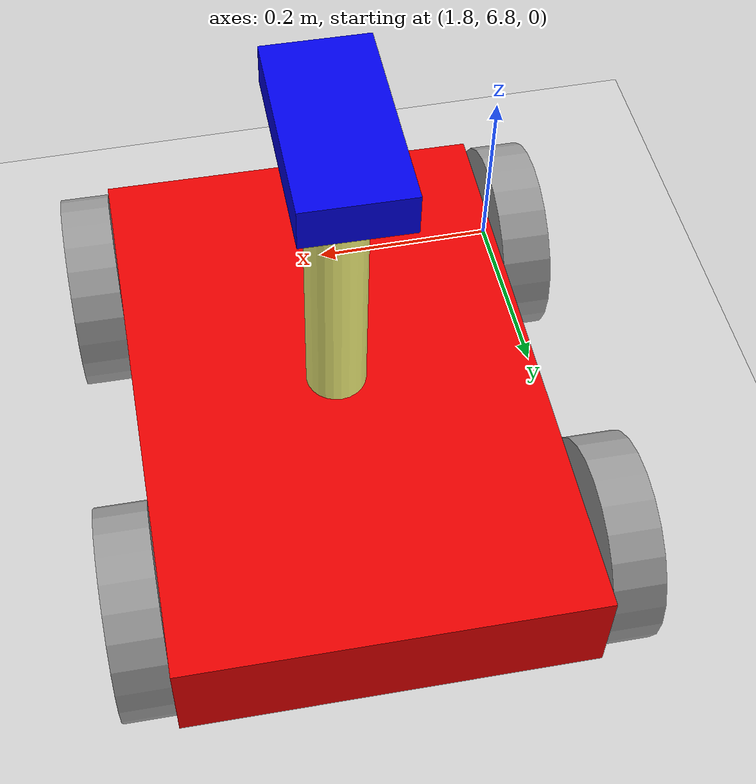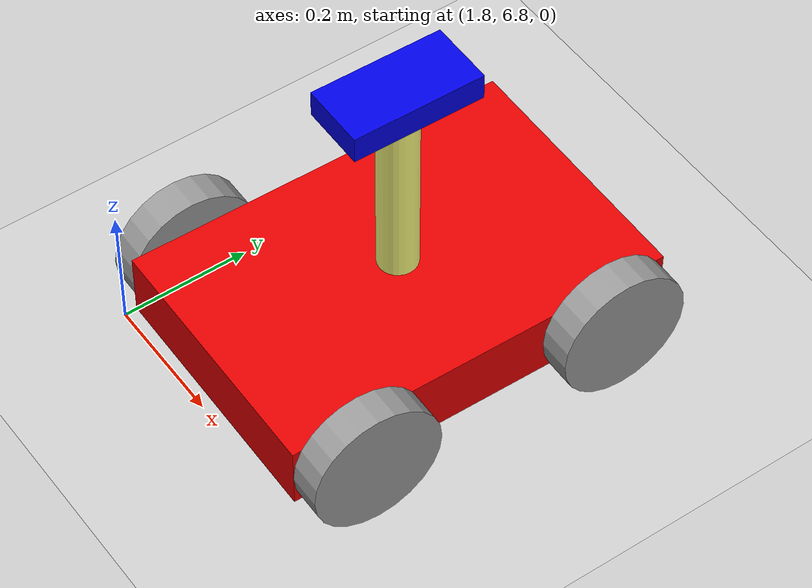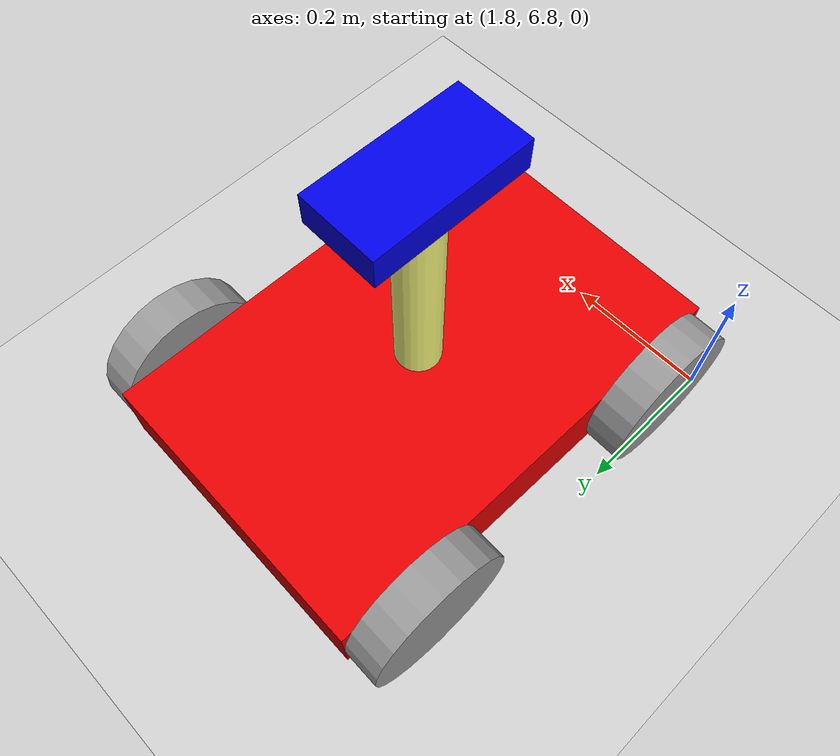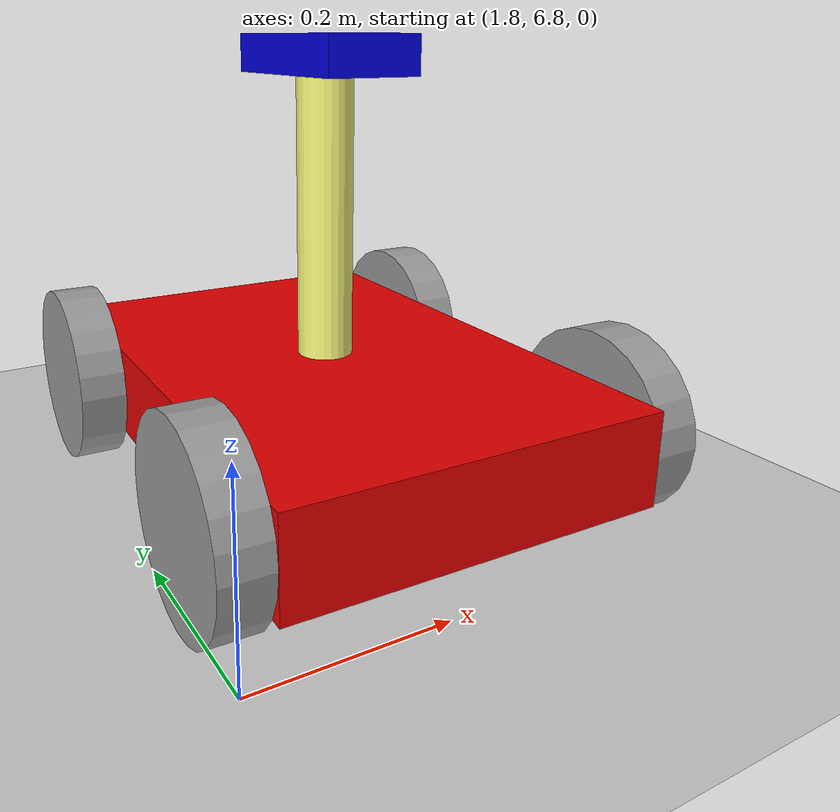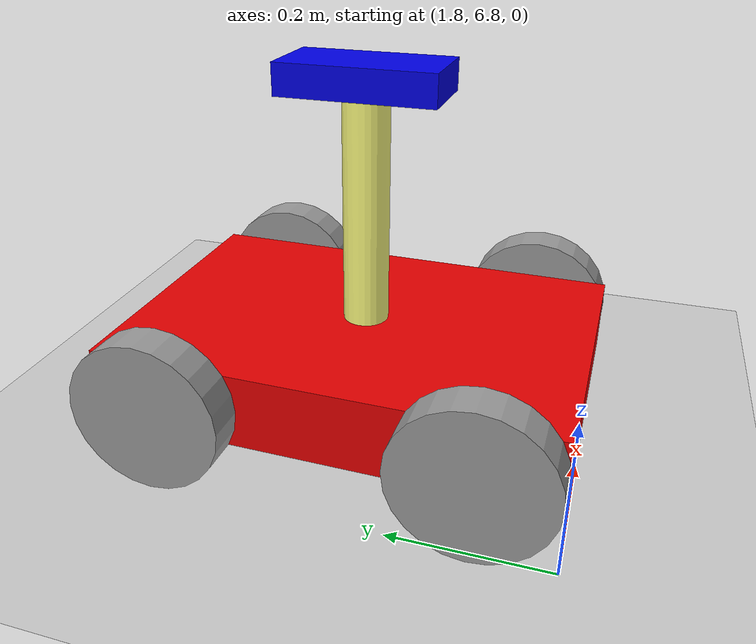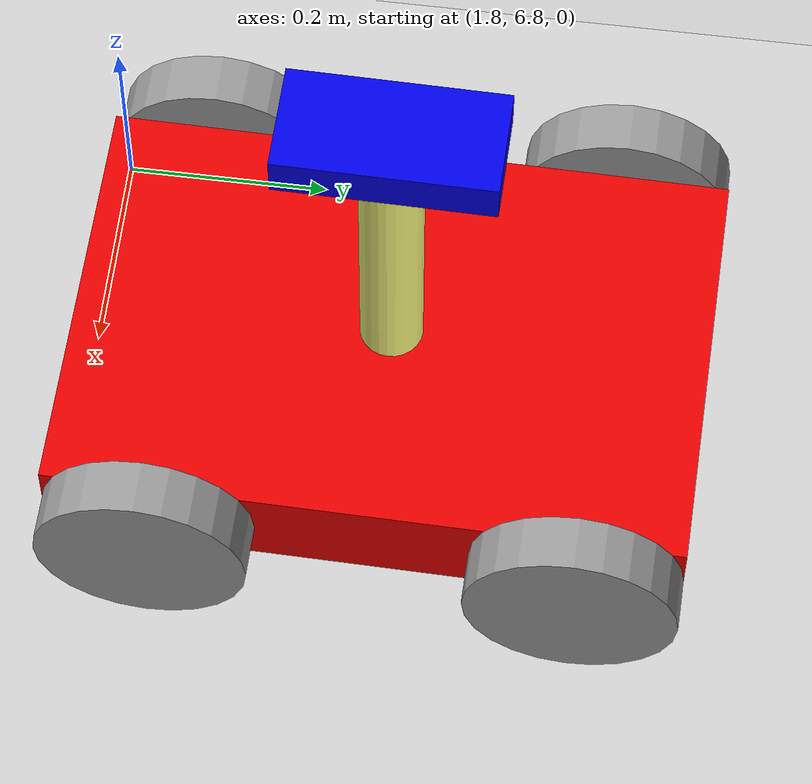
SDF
<sdf version="1.6">
 <world name="default">
  <model name="ground_plane">
   <static>1</static>
   <link name="link">
    <collision name="collision">
     <geometry><plane><normal>0 0 1</normal><size>100 100</size></plane></geometry>
     <surface><friction><ode><mu>100</mu><mu2>50</mu2></ode></friction></surface>
    </collision>
    <visual name="visual">
     <cast_shadows>0</cast_shadows>
     <geometry><plane><normal>0 0 1</normal><size>100 100</size></plane></geometry>
     <material>
      <script><uri>file://media/materials/scripts/gazebo.material</uri><name>Gazebo/Grey</name></script>
     </material>
    </visual>
   </link>
  </model>
  <model name="MyInspectionRobot_0">
   <link name="link_10">
    <pose>0 0 0.37 0 -0 0</pose>
    <inertial>
     <mass>1</mass>
     <inertia>
      <ixx>0.166667</ixx>
      <ixy>0</ixy>
      <ixz>0</ixz>
      <iyy>0.166667</iyy>
      <iyz>0</iyz>
      <izz>0.166667</izz>
     </inertia>
    </inertial>
    <visual name="visual">
     <geometry><box><size>0.2 0.1 0.04</size></box></geometry>
     <material>
      <lighting>1</lighting>
      <script><uri>file://media/materials/scripts/gazebo.material</uri><name>Gazebo/Grey</name></script>
      <ambient>0.3 0.3 0.3 1</ambient>
      <diffuse>0 0 0.9 1</diffuse>
      <specular>0.01 0.01 0.01 1</specular>
      <emissive>0 0 0 1</emissive>
      <shader type="vertex"><normal_map>__default__</normal_map></shader>
     </material>
    </visual>
    <collision name="collision">
     <geometry><box><size>0.2 0.1 0.04</size></box></geometry>
     <surface>
      <friction>
       <ode><mu>1</mu><mu2>1</mu2><fdir1>0 0 0</fdir1><slip1>0</slip1><slip2>0</slip2></ode>
       <torsional>
        <coefficient>1</coefficient>
        <patch_radius>0</patch_radius>
        <surface_radius>0</surface_radius>
        <use_patch_radius>1</use_patch_radius>
        <ode><slip>0</slip></ode>
       </torsional>
      </friction>
      <bounce><restitution_coefficient>0</restitution_coefficient><threshold>1e+06</threshold></bounce>
      <contact>
       <collide_without_contact>0</collide_without_contact>
       <collide_without_contact_bitmask>1</collide_without_contact_bitmask>
       <collide_bitmask>1</collide_bitmask>
       <ode>
        <soft_cfm>0</soft_cfm>
        <soft_erp>0.2</soft_erp>
        <kp>1e+13</kp>
        <kd>1</kd>
        <max_vel>0.01</max_vel>
        <min_depth>0</min_depth>
       </ode>
       <bullet>
        <split_impulse>1</split_impulse>
        <split_impulse_penetration_threshold>-0.01</split_impulse_penetration_threshold>
        <soft_cfm>0</soft_cfm>
        <soft_erp>0.2</soft_erp>
        <kp>1e+13</kp>
        <kd>1</kd>
       </bullet>
      </contact>
     </surface>
    </collision>
   </link>
   <link name="link_6">
    <inertial>
     <mass>1</mass>
     <inertia>
      <ixx>0.166667</ixx>
      <ixy>0</ixy>
      <ixz>0</ixz>
      <iyy>0.166667</iyy>
      <iyz>0</iyz>
      <izz>0.166667</izz>
     </inertia>
    </inertial>
    <visual name="visual">
     <geometry><box><size>0.6 0.4 0.1</size></box></geometry>
     <material>
      <lighting>1</lighting>
      <script><uri>file://media/materials/scripts/gazebo.material</uri><name>Gazebo/Grey</name></script>
      <ambient>0.3 0.3 0.3 1</ambient>
      <diffuse>0.9 0 0 1</diffuse>
      <specular>0.01 0.01 0.01 1</specular>
      <emissive>0 0 0 1</emissive>
      <shader type="vertex"><normal_map>__default__</normal_map></shader>
     </material>
    </visual>
    <collision name="collision">
     <geometry><box><size>0.6 0.4 0.1</size></box></geometry>
     <surface>
      <friction>
       <ode><mu>1</mu><mu2>1</mu2><fdir1>0 0 0</fdir1><slip1>0</slip1><slip2>0</slip2></ode>
       <torsional>
        <coefficient>1</coefficient>
        <patch_radius>0</patch_radius>
        <surface_radius>0</surface_radius>
        <use_patch_radius>1</use_patch_radius>
        <ode><slip>0</slip></ode>
       </torsional>
      </friction>
      <bounce><restitution_coefficient>0</restitution_coefficient><threshold>1e+06</threshold></bounce>
      <contact>
       <collide_without_contact>0</collide_without_contact>
       <collide_without_contact_bitmask>1</collide_without_contact_bitmask>
       <collide_bitmask>1</collide_bitmask>
       <ode>
        <soft_cfm>0</soft_cfm>
        <soft_erp>0.2</soft_erp>
        <kp>1e+13</kp>
        <kd>1</kd>
        <max_vel>0.01</max_vel>
        <min_depth>0</min_depth>
       </ode>
       <bullet>
        <split_impulse>1</split_impulse>
        <split_impulse_penetration_threshold>-0.01</split_impulse_penetration_threshold>
        <soft_cfm>0</soft_cfm>
        <soft_erp>0.2</soft_erp>
        <kp>1e+13</kp>
        <kd>1</kd>
       </bullet>
      </contact>
     </surface>
    </collision>
   </link>
   <link name="link_8">
    <pose>-0.2 -0.22501 0 1.5707 -0 0</pose>
    <inertial>
     <mass>1</mass>
     <inertia><ixx>0.145833</ixx><ixy>0</ixy><ixz>0</ixz><iyy>0.145833</iyy><iyz>0</iyz><izz>0.125</izz></inertia>
    </inertial>
    <visual name="visual">
     <geometry><cylinder><radius>0.1</radius><length>0.05</length></cylinder></geometry>
     <material>
      <lighting>1</lighting>
      <script><uri>file://media/materials/scripts/gazebo.material</uri><name>Gazebo/Grey</name></script>
      <ambient>0.3 0.3 0.3 1</ambient>
      <diffuse>0 0 0 1</diffuse>
      <specular>0.01 0.01 0.01 1</specular>
      <emissive>0 0 0 1</emissive>
      <shader type="vertex"><normal_map>__default__</normal_map></shader>
     </material>
    </visual>
    <collision name="collision">
     <geometry><cylinder><radius>0.1</radius><length>0.05</length></cylinder></geometry>
     <surface>
      <friction>
       <ode><mu>1</mu><mu2>1</mu2><fdir1>0 0 0</fdir1><slip1>0</slip1><slip2>0</slip2></ode>
       <torsional>
        <coefficient>1</coefficient>
        <patch_radius>0</patch_radius>
        <surface_radius>0</surface_radius>
        <use_patch_radius>1</use_patch_radius>
        <ode><slip>0</slip></ode>
       </torsional>
      </friction>
      <bounce><restitution_coefficient>0</restitution_coefficient><threshold>1e+06</threshold></bounce>
      <contact>
       <collide_without_contact>0</collide_without_contact>
       <collide_without_contact_bitmask>1</collide_without_contact_bitmask>
       <collide_bitmask>1</collide_bitmask>
       <ode>
        <soft_cfm>0</soft_cfm>
        <soft_erp>0.2</soft_erp>
        <kp>1e+13</kp>
        <kd>1</kd>
        <max_vel>0.01</max_vel>
        <min_depth>0</min_depth>
       </ode>
       <bullet>
        <split_impulse>1</split_impulse>
        <split_impulse_penetration_threshold>-0.01</split_impulse_penetration_threshold>
        <soft_cfm>0</soft_cfm>
        <soft_erp>0.2</soft_erp>
        <kp>1e+13</kp>
        <kd>1</kd>
       </bullet>
      </contact>
     </surface>
    </collision>
   </link>
   <link name="link_8_clone">
    <pose>-0.2 0.22501 0 1.5707 -0 0</pose>
    <inertial>
     <mass>1</mass>
     <inertia><ixx>0.145833</ixx><ixy>0</ixy><ixz>0</ixz><iyy>0.145833</iyy><iyz>0</iyz><izz>0.125</izz></inertia>
    </inertial>
    <visual name="visual">
     <geometry><cylinder><radius>0.1</radius><length>0.05</length></cylinder></geometry>
     <material>
      <lighting>1</lighting>
      <script><uri>file://media/materials/scripts/gazebo.material</uri><name>Gazebo/Grey</name></script>
      <ambient>0.3 0.3 0.3 1</ambient>
      <diffuse>0 0 0 1</diffuse>
      <specular>0.01 0.01 0.01 1</specular>
      <emissive>0 0 0 1</emissive>
      <shader type="vertex"><normal_map>__default__</normal_map></shader>
     </material>
    </visual>
    <collision name="collision">
     <geometry><cylinder><radius>0.1</radius><length>0.05</length></cylinder></geometry>
     <surface>
      <friction>
       <ode><mu>1</mu><mu2>1</mu2><fdir1>0 0 0</fdir1><slip1>0</slip1><slip2>0</slip2></ode>
       <torsional>
        <coefficient>1</coefficient>
        <patch_radius>0</patch_radius>
        <surface_radius>0</surface_radius>
        <use_patch_radius>1</use_patch_radius>
        <ode><slip>0</slip></ode>
       </torsional>
      </friction>
      <bounce><restitution_coefficient>0</restitution_coefficient><threshold>1e+06</threshold></bounce>
      <contact>
       <collide_without_contact>0</collide_without_contact>
       <collide_without_contact_bitmask>1</collide_without_contact_bitmask>
       <collide_bitmask>1</collide_bitmask>
       <ode>
        <soft_cfm>0</soft_cfm>
        <soft_erp>0.2</soft_erp>
        <kp>1e+13</kp>
        <kd>1</kd>
        <max_vel>0.01</max_vel>
        <min_depth>0</min_depth>
       </ode>
       <bullet>
        <split_impulse>1</split_impulse>
        <split_impulse_penetration_threshold>-0.01</split_impulse_penetration_threshold>
        <soft_cfm>0</soft_cfm>
        <soft_erp>0.2</soft_erp>
        <kp>1e+13</kp>
        <kd>1</kd>
       </bullet>
      </contact>
     </surface>
    </collision>
   </link>
   <link name="link_8_clone_clone">
    <pose>0.2 -0.22501 0 1.5707 -0 0</pose>
    <inertial>
     <mass>1</mass>
     <inertia><ixx>0.145833</ixx><ixy>0</ixy><ixz>0</ixz><iyy>0.145833</iyy><iyz>0</iyz><izz>0.125</izz></inertia>
    </inertial>
    <visual name="visual">
     <geometry><cylinder><radius>0.1</radius><length>0.05</length></cylinder></geometry>
     <material>
      <lighting>1</lighting>
      <script><uri>file://media/materials/scripts/gazebo.material</uri><name>Gazebo/Grey</name></script>
      <ambient>0.3 0.3 0.3 1</ambient>
      <diffuse>0 0 0 1</diffuse>
      <specular>0.01 0.01 0.01 1</specular>
      <emissive>0 0 0 1</emissive>
      <shader type="vertex"><normal_map>__default__</normal_map></shader>
     </material>
    </visual>
    <collision name="collision">
     <geometry><cylinder><radius>0.1</radius><length>0.05</length></cylinder></geometry>
     <surface>
      <friction>
       <ode><mu>1</mu><mu2>1</mu2><fdir1>0 0 0</fdir1><slip1>0</slip1><slip2>0</slip2></ode>
       <torsional>
        <coefficient>1</coefficient>
        <patch_radius>0</patch_radius>
        <surface_radius>0</surface_radius>
        <use_patch_radius>1</use_patch_radius>
        <ode><slip>0</slip></ode>
       </torsional>
      </friction>
      <bounce><restitution_coefficient>0</restitution_coefficient><threshold>1e+06</threshold></bounce>
      <contact>
       <collide_without_contact>0</collide_without_contact>
       <collide_without_contact_bitmask>1</collide_without_contact_bitmask>
       <collide_bitmask>1</collide_bitmask>
       <ode>
        <soft_cfm>0</soft_cfm>
        <soft_erp>0.2</soft_erp>
        <kp>1e+13</kp>
        <kd>1</kd>
        <max_vel>0.01</max_vel>
        <min_depth>0</min_depth>
       </ode>
       <bullet>
        <split_impulse>1</split_impulse>
        <split_impulse_penetration_threshold>-0.01</split_impulse_penetration_threshold>
        <soft_cfm>0</soft_cfm>
        <soft_erp>0.2</soft_erp>
        <kp>1e+13</kp>
        <kd>1</kd>
       </bullet>
      </contact>
     </surface>
    </collision>
   </link>
   <link name="link_8_clone_clone_clone">
    <pose>0.2 0.22501 0 1.5707 -0 0</pose>
    <inertial>
     <mass>1</mass>
     <inertia><ixx>0.145833</ixx><ixy>0</ixy><ixz>0</ixz><iyy>0.145833</iyy><iyz>0</iyz><izz>0.125</izz></inertia>
    </inertial>
    <visual name="visual">
     <geometry><cylinder><radius>0.1</radius><length>0.05</length></cylinder></geometry>
     <material>
      <lighting>1</lighting>
      <script><uri>file://media/materials/scripts/gazebo.material</uri><name>Gazebo/Grey</name></script>
      <ambient>0.3 0.3 0.3 1</ambient>
      <diffuse>0 0 0 1</diffuse>
      <specular>0.01 0.01 0.01 1</specular>
      <emissive>0 0 0 1</emissive>
      <shader type="vertex"><normal_map>__default__</normal_map></shader>
     </material>
    </visual>
    <collision name="collision">
     <geometry><cylinder><radius>0.1</radius><length>0.05</length></cylinder></geometry>
     <surface>
      <friction>
       <ode><mu>1</mu><mu2>1</mu2><fdir1>0 0 0</fdir1><slip1>0</slip1><slip2>0</slip2></ode>
       <torsional>
        <coefficient>1</coefficient>
        <patch_radius>0</patch_radius>
        <surface_radius>0</surface_radius>
        <use_patch_radius>1</use_patch_radius>
        <ode><slip>0</slip></ode>
       </torsional>
      </friction>
      <bounce><restitution_coefficient>0</restitution_coefficient><threshold>1e+06</threshold></bounce>
      <contact>
       <collide_without_contact>0</collide_without_contact>
       <collide_without_contact_bitmask>1</collide_without_contact_bitmask>
       <collide_bitmask>1</collide_bitmask>
       <ode>
        <soft_cfm>0</soft_cfm>
        <soft_erp>0.2</soft_erp>
        <kp>1e+13</kp>
        <kd>1</kd>
        <max_vel>0.01</max_vel>
        <min_depth>0</min_depth>
       </ode>
       <bullet>
        <split_impulse>1</split_impulse>
        <split_impulse_penetration_threshold>-0.01</split_impulse_penetration_threshold>
        <soft_cfm>0</soft_cfm>
        <soft_erp>0.2</soft_erp>
        <kp>1e+13</kp>
        <kd>1</kd>
       </bullet>
      </contact>
     </surface>
    </collision>
   </link>
   <link name="link_9">
    <pose>0 0 0.2 0 -0 0</pose>
    <inertial>
     <mass>1</mass>
     <inertia><ixx>0.145833</ixx><ixy>0</ixy><ixz>0</ixz><iyy>0.145833</iyy><iyz>0</iyz><izz>0.125</izz></inertia>
    </inertial>
    <visual name="visual">
     <geometry><cylinder><radius>0.03</radius><length>0.3</length></cylinder></geometry>
     <material>
      <lighting>1</lighting>
      <script><uri>file://media/materials/scripts/gazebo.material</uri><name>Gazebo/Grey</name></script>
      <ambient>0.3 0.3 0.3 1</ambient>
      <diffuse>1 1 0.5 1</diffuse>
      <specular>0.01 0.01 0.01 1</specular>
      <emissive>0 0 0 1</emissive>
      <shader type="vertex"><normal_map>__default__</normal_map></shader>
     </material>
    </visual>
    <collision name="collision">
     <geometry><cylinder><radius>0.03</radius><length>0.3</length></cylinder></geometry>
     <surface>
      <friction>
       <ode><mu>1</mu><mu2>1</mu2><fdir1>0 0 0</fdir1><slip1>0</slip1><slip2>0</slip2></ode>
       <torsional>
        <coefficient>1</coefficient>
        <patch_radius>0</patch_radius>
        <surface_radius>0</surface_radius>
        <use_patch_radius>1</use_patch_radius>
        <ode><slip>0</slip></ode>
       </torsional>
      </friction>
      <bounce><restitution_coefficient>0</restitution_coefficient><threshold>1e+06</threshold></bounce>
      <contact>
       <collide_without_contact>0</collide_without_contact>
       <collide_without_contact_bitmask>1</collide_without_contact_bitmask>
       <collide_bitmask>1</collide_bitmask>
       <ode>
        <soft_cfm>0</soft_cfm>
        <soft_erp>0.2</soft_erp>
        <kp>1e+13</kp>
        <kd>1</kd>
        <max_vel>0.01</max_vel>
        <min_depth>0</min_depth>
       </ode>
       <bullet>
        <split_impulse>1</split_impulse>
        <split_impulse_penetration_threshold>-0.01</split_impulse_penetration_threshold>
        <soft_cfm>0</soft_cfm>
        <soft_erp>0.2</soft_erp>
        <kp>1e+13</kp>
        <kd>1</kd>
       </bullet>
      </contact>
     </surface>
    </collision>
   </link>
   <joint name="link_6_JOINT_1" type="revolute">
    <parent>link_6</parent>
    <child>link_8</child>
    <axis>
     <xyz>0 0 1</xyz>
     <use_parent_model_frame>0</use_parent_model_frame>
     <limit>
      <lower>-1.79769e+308</lower>
      <upper>1.79769e+308</upper>
      <effort>-1</effort>
      <velocity>-1</velocity>
     </limit>
     <dynamics>
      <spring_reference>0</spring_reference>
      <spring_stiffness>0</spring_stiffness>
      <damping>0</damping>
     </dynamics>
    </axis>
    <physics>
     <ode><limit><cfm>0</cfm><erp>0.2</erp></limit><suspension><cfm>0</cfm><erp>0.2</erp></suspension></ode>
    </physics>
   </joint>
   <joint name="link_6_JOINT_2" type="revolute">
    <parent>link_6</parent>
    <child>link_8_clone</child>
    <axis>
     <xyz>0 0 1</xyz>
     <use_parent_model_frame>0</use_parent_model_frame>
     <limit>
      <lower>-1.79769e+308</lower>
      <upper>1.79769e+308</upper>
      <effort>-1</effort>
      <velocity>-1</velocity>
     </limit>
     <dynamics>
      <spring_reference>0</spring_reference>
      <spring_stiffness>0</spring_stiffness>
      <damping>0</damping>
     </dynamics>
    </axis>
    <physics>
     <ode><limit><cfm>0</cfm><erp>0.2</erp></limit><suspension><cfm>0</cfm><erp>0.2</erp></suspension></ode>
    </physics>
   </joint>
   <joint name="link_6_JOINT_3" type="revolute">
    <parent>link_6</parent>
    <child>link_8_clone_clone</child>
    <axis>
     <xyz>0 0 1</xyz>
     <use_parent_model_frame>0</use_parent_model_frame>
     <limit>
      <lower>-1.79769e+308</lower>
      <upper>1.79769e+308</upper>
      <effort>-1</effort>
      <velocity>-1</velocity>
     </limit>
     <dynamics>
      <spring_reference>0</spring_reference>
      <spring_stiffness>0</spring_stiffness>
      <damping>0</damping>
     </dynamics>
    </axis>
    <physics>
     <ode><limit><cfm>0</cfm><erp>0.2</erp></limit><suspension><cfm>0</cfm><erp>0.2</erp></suspension></ode>
    </physics>
   </joint>
   <joint name="link_6_JOINT_4" type="revolute">
    <parent>link_6</parent>
    <child>link_8_clone_clone_clone</child>
    <axis>
     <xyz>0 0 1</xyz>
     <use_parent_model_frame>0</use_parent_model_frame>
     <limit>
      <lower>-1.79769e+308</lower>
      <upper>1.79769e+308</upper>
      <effort>-1</effort>
      <velocity>-1</velocity>
     </limit>
     <dynamics>
      <spring_reference>0</spring_reference>
      <spring_stiffness>0</spring_stiffness>
      <damping>0</damping>
     </dynamics>
    </axis>
    <physics>
     <ode><limit><cfm>0</cfm><erp>0.2</erp></limit><suspension><cfm>0</cfm><erp>0.2</erp></suspension></ode>
    </physics>
   </joint>
   <joint name="link_6_JOINT_5" type="revolute">
    <parent>link_6</parent>
    <child>link_9</child>
    <pose>0 0 -0.15 0 -0 0</pose>
    <axis>
     <xyz>0 0 1</xyz>
     <use_parent_model_frame>0</use_parent_model_frame>
     <limit>
      <lower>-1.79769e+308</lower>
      <upper>1.79769e+308</upper>
      <effort>-1</effort>
      <velocity>-1</velocity>
     </limit>
     <dynamics>
      <spring_reference>0</spring_reference>
      <spring_stiffness>0</spring_stiffness>
      <damping>0</damping>
     </dynamics>
    </axis>
    <physics>
     <ode><limit><cfm>0</cfm><erp>0.2</erp></limit><suspension><cfm>0</cfm><erp>0.2</erp></suspension></ode>
    </physics>
   </joint>
   <joint name="link_9_JOINT_7" type="revolute">
    <parent>link_9</parent>
    <child>link_10</child>
    <pose>0 0 -0.02 0 -0 0</pose>
    <axis>
     <xyz>0 0 1</xyz>
     <use_parent_model_frame>0</use_parent_model_frame>
     <limit>
      <lower>-1.79769e+308</lower>
      <upper>1.79769e+308</upper>
      <effort>-1</effort>
      <velocity>-1</velocity>
     </limit>
     <dynamics>
      <spring_reference>0</spring_reference>
      <spring_stiffness>0</spring_stiffness>
      <damping>0</damping>
     </dynamics>
    </axis>
    <physics>
     <ode><limit><cfm>0</cfm><erp>0.2</erp></limit><suspension><cfm>0</cfm><erp>0.2</erp></suspension></ode>
    </physics>
   </joint>
   <static>0</static>
   <pose>2.04017 7.09708 0.099999 1e-05 -5e-06 -1.58719</pose>
  </model>
 </world>
</sdf>
